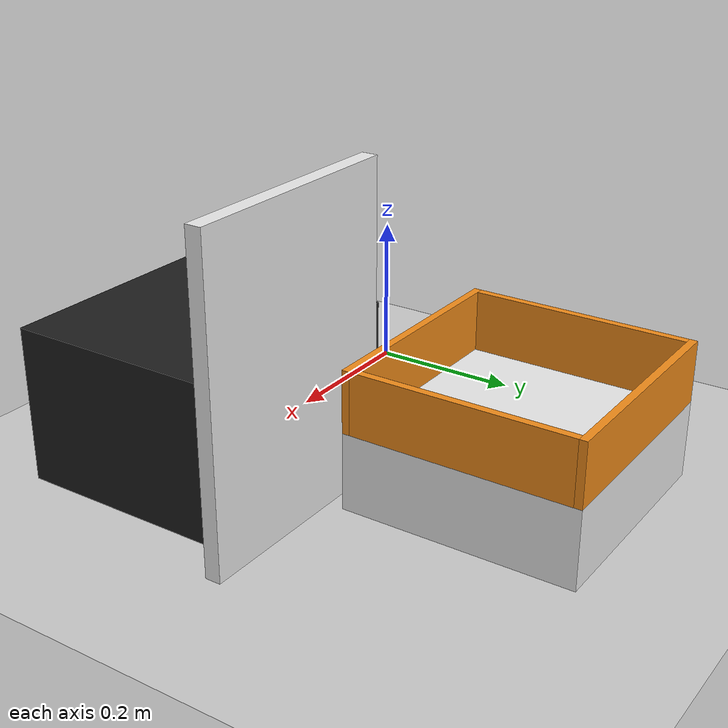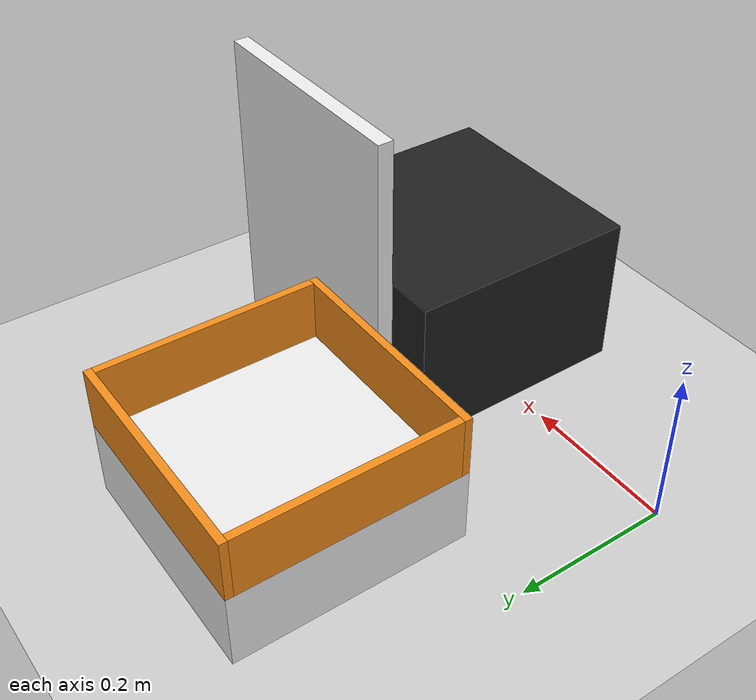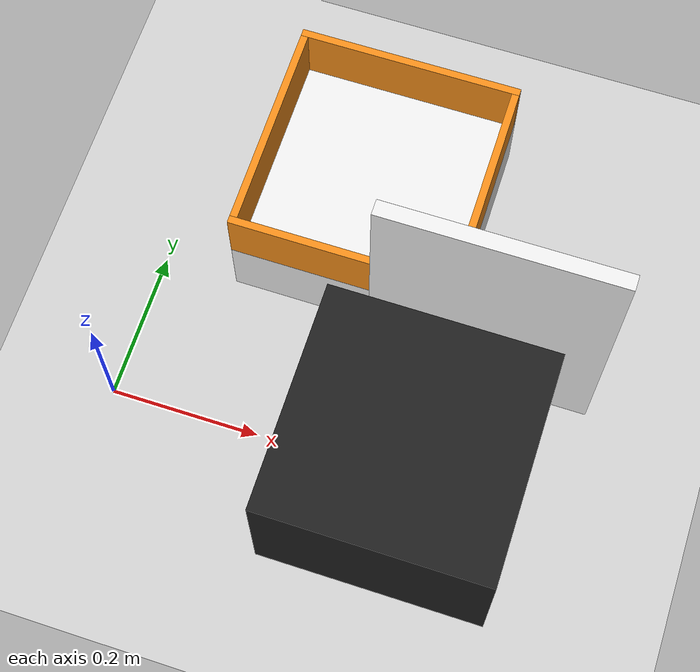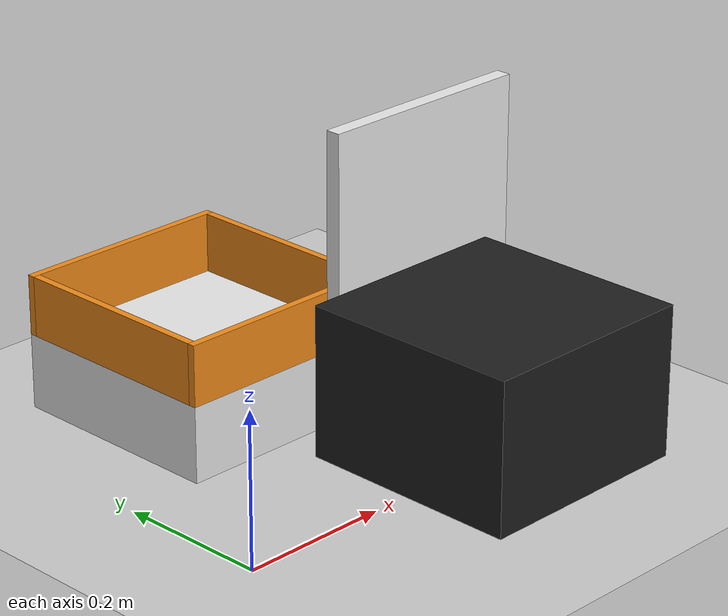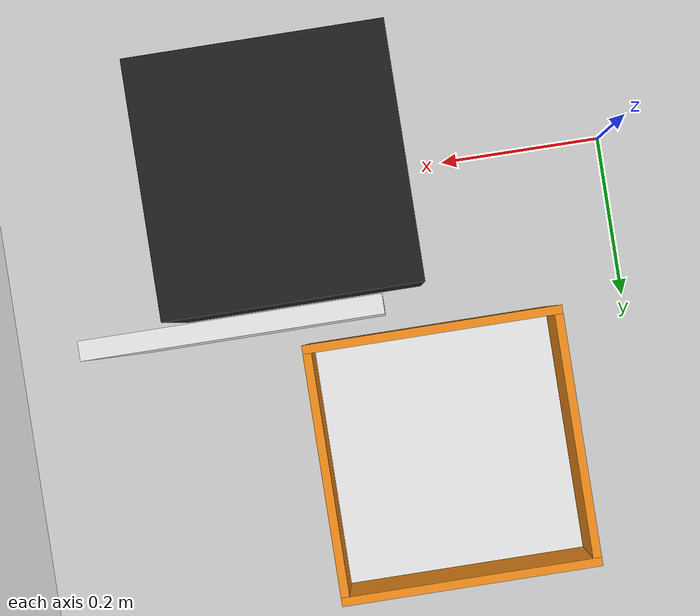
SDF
<sdf version="1.4">
 <world name="empty">
  <include><uri>model://sun</uri></include>
  <include><uri>model://ground_plane</uri></include>
  <physics type="ode">
   <max_step_size>0.001</max_step_size>
   <real_time_factor>1</real_time_factor>
   <real_time_update_rate>1000</real_time_update_rate>
   <gravity>0 0 -9.81</gravity>
  </physics>
  <model name="table_box_model_grasp">
   <static>true</static>
   <pose>0.40 0.0 0.1 0 -0 1.5707963265</pose>
   <link name="table_box_link_grasp">
    <inertial>
     <mass>1</mass>
     <inertia>
      <ixx>0.166667</ixx>
      <ixy>0</ixy>
      <ixz>0</ixz>
      <iyy>0.166667</iyy>
      <iyz>0</iyz>
      <izz>0.166667</izz>
     </inertia>
    </inertial>
    <collision name="collision">
     <geometry><box><size>0.30 0.30 0.2</size></box></geometry>
     <surface><friction><ode><mu>0.6</mu><mu2>0.6</mu2></ode></friction></surface>
    </collision>
    <visual name="visual">
     <geometry><box><size>0.30 0.30 0.2</size></box></geometry>
     <material>
      <script><name>Gazebo/Black</name><uri>file://media/materials/scripts/gazebo.material</uri></script>
     </material>
    </visual>
   </link>
  </model>
  <model name="table_box_model_place">
   <static>true</static>
   <pose>0.25 0.35 0.05 0 -0 1.5707963265</pose>
   <link name="table_box_link_place">
    <inertial>
     <mass>1</mass>
     <inertia>
      <ixx>0.166667</ixx>
      <ixy>0</ixy>
      <ixz>0</ixz>
      <iyy>0.166667</iyy>
      <iyz>0</iyz>
      <izz>0.166667</izz>
     </inertia>
    </inertial>
    <collision name="collision">
     <geometry><box><size>0.30 0.30 0.1</size></box></geometry>
     <surface><friction><ode><mu>0.6</mu><mu2>0.6</mu2></ode></friction></surface>
    </collision>
    <visual name="visual">
     <geometry><box><size>0.30 0.30 0.1</size></box></geometry>
     <material>
      <script><name>Gazebo/White</name><uri>file://media/materials/scripts/gazebo.material</uri></script>
     </material>
    </visual>
   </link>
  </model>
  <model name="collision_model">
   <static>true</static>
   <pose>0.45 0.17 0.2 0 0 0</pose>
   <link name="collision_link_g">
    <inertial>
     <mass>1</mass>
     <inertia>
      <ixx>0.166667</ixx>
      <ixy>0</ixy>
      <ixz>0</ixz>
      <iyy>0.166667</iyy>
      <iyz>0</iyz>
      <izz>0.166667</izz>
     </inertia>
    </inertial>
    <collision name="collision">
     <geometry><box><size>0.30 0.02 0.4</size></box></geometry>
     <surface><friction><ode><mu>0.6</mu><mu2>0.6</mu2></ode></friction></surface>
    </collision>
    <visual name="visual">
     <geometry><box><size>0.30 0.02 0.4</size></box></geometry>
     <material>
      <script><name>Gazebo/White</name><uri>file://media/materials/scripts/gazebo.material</uri></script>
     </material>
    </visual>
   </link>
  </model>
  <model name="box_wall1_model">
   <static>true</static>
   <pose>0.25 0.495 0.14 0 -0 1.5707963265</pose>
   <link name="box_wall1_link">
    <inertial>
     <mass>1</mass>
     <inertia>
      <ixx>0.166667</ixx>
      <ixy>0</ixy>
      <ixz>0</ixz>
      <iyy>0.166667</iyy>
      <iyz>0</iyz>
      <izz>0.166667</izz>
     </inertia>
    </inertial>
    <collision name="collision">
     <geometry><box><size>0.01 0.30 0.08</size></box></geometry>
     <surface><friction><ode><mu>0.6</mu><mu2>0.6</mu2></ode></friction></surface>
    </collision>
    <visual name="visual">
     <geometry><box><size>0.01 0.30 0.08</size></box></geometry>
     <material>
      <script><name>Gazebo/Orange</name><uri>file://media/materials/scripts/gazebo.material</uri></script>
     </material>
    </visual>
   </link>
  </model>
  <model name="box_wall2_model">
   <static>true</static>
   <pose>0.25 0.205 0.14 0 -0 1.5707963265</pose>
   <link name="box_wall2_link">
    <inertial>
     <mass>1</mass>
     <inertia>
      <ixx>0.166667</ixx>
      <ixy>0</ixy>
      <ixz>0</ixz>
      <iyy>0.166667</iyy>
      <iyz>0</iyz>
      <izz>0.166667</izz>
     </inertia>
    </inertial>
    <collision name="collision">
     <geometry><box><size>0.01 0.30 0.08</size></box></geometry>
     <surface><friction><ode><mu>0.6</mu><mu2>0.6</mu2></ode></friction></surface>
    </collision>
    <visual name="visual">
     <geometry><box><size>0.01 0.30 0.08</size></box></geometry>
     <material>
      <script><name>Gazebo/Orange</name><uri>file://media/materials/scripts/gazebo.material</uri></script>
     </material>
    </visual>
   </link>
  </model>
  <model name="box_wall3_model">
   <static>true</static>
   <pose>0.105 0.35 0.14 0 -0 1.5707963265</pose>
   <link name="box_wall3_link">
    <inertial>
     <mass>1</mass>
     <inertia>
      <ixx>0.166667</ixx>
      <ixy>0</ixy>
      <ixz>0</ixz>
      <iyy>0.166667</iyy>
      <iyz>0</iyz>
      <izz>0.166667</izz>
     </inertia>
    </inertial>
    <collision name="collision">
     <geometry><box><size>0.28 0.01 0.08</size></box></geometry>
     <surface><friction><ode><mu>0.6</mu><mu2>0.6</mu2></ode></friction></surface>
    </collision>
    <visual name="visual">
     <geometry><box><size>0.28 0.01 0.08</size></box></geometry>
     <material>
      <script><name>Gazebo/Orange</name><uri>file://media/materials/scripts/gazebo.material</uri></script>
     </material>
    </visual>
   </link>
  </model>
  <model name="box_wall4_model">
   <static>true</static>
   <pose>0.395 0.35 0.14 0 -0 1.5707963265</pose>
   <link name="box_wall4_link">
    <inertial>
     <mass>1</mass>
     <inertia>
      <ixx>0.166667</ixx>
      <ixy>0</ixy>
      <ixz>0</ixz>
      <iyy>0.166667</iyy>
      <iyz>0</iyz>
      <izz>0.166667</izz>
     </inertia>
    </inertial>
    <collision name="collision">
     <geometry><box><size>0.28 0.01 0.08</size></box></geometry>
     <surface><friction><ode><mu>0.6</mu><mu2>0.6</mu2></ode></friction></surface>
    </collision>
    <visual name="visual">
     <geometry><box><size>0.28 0.01 0.08</size></box></geometry>
     <material>
      <script><name>Gazebo/Orange</name><uri>file://media/materials/scripts/gazebo.material</uri></script>
     </material>
    </visual>
   </link>
  </model>
 </world>
</sdf>
